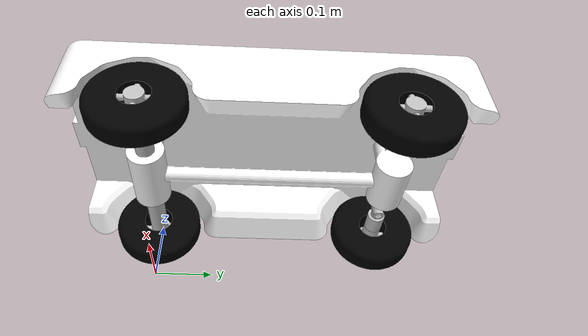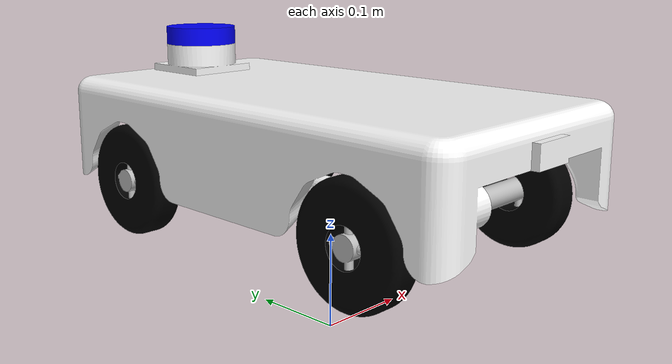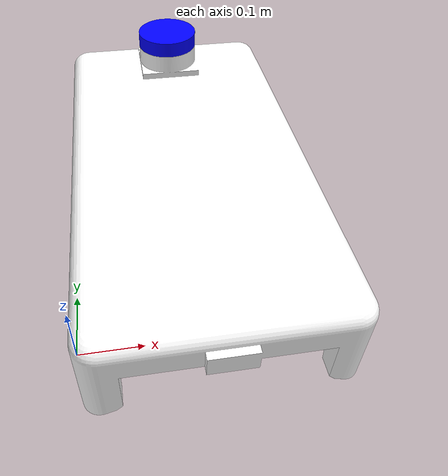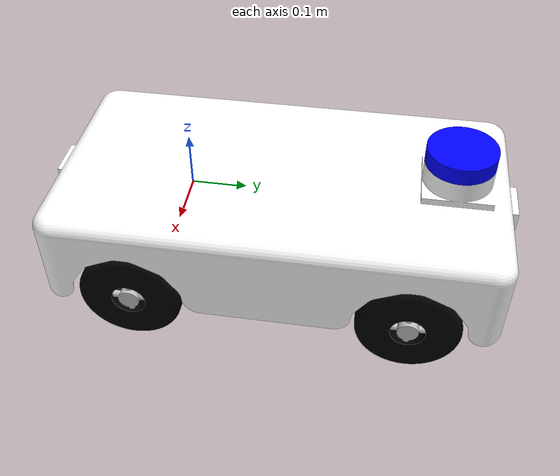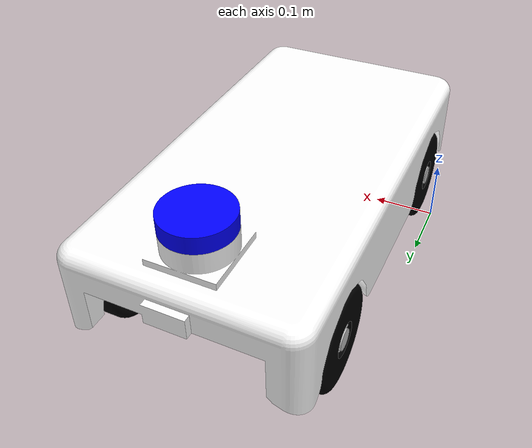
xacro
<?xml version="1.0" ?>
<robot name="carl" xmlns:xacro="http://www.ros.org/wiki/xacro">

<xacro:include filename="$(find carl_description)/urdf/materials.xacro" />
<xacro:include filename="$(find carl_description)/urdf/carl.ros2control" />
<xacro:include filename="$(find carl_description)/urdf/carl.gazebo" />
<link name="base_link">
  <inertial>
    <origin xyz="0.19274272765614664 0.20667696010061948 0.1698503724518462" rpy="0 0 0"/>
    <mass value="119.42621336084548"/>
    <inertia ixx="4.353879" iyy="1.545392" izz="5.601709" ixy="1.8e-05" iyz="-0.030575" ixz="-1.3e-05"/>
  </inertial>
  <visual>
    <origin xyz="0 0 0" rpy="0 0 0"/>
    <geometry>
      <mesh filename="file://$(find carl_description)/meshes/base_link.stl" scale="0.001 0.001 0.001"/>
    </geometry>
    <material name="white"/>
  </visual>
  <collision>
    <origin xyz="0 0 0" rpy="0 0 0"/>
    <geometry>
      <mesh filename="file://$(find carl_description)/meshes/base_link.stl" scale="0.001 0.001 0.001"/>
    </geometry>
  </collision>
</link>

<link name="destra_posteriore_1_1">
  <inertial>
    <origin xyz="0.07594062536046847 5.220698254173861e-15 2.42861286636753e-15" rpy="0 0 0"/>
    <mass value="0.8700997280951979"/>
    <inertia ixx="0.000109" iyy="0.001777" izz="0.001772" ixy="0.0" iyz="0.0" ixz="-0.0"/>
  </inertial>
  <visual>
    <origin xyz="-0.217744 -0.0 -0.08" rpy="0 0 0"/>
    <geometry>
      <mesh filename="file://$(find carl_description)/meshes/destra_posteriore_1_1.stl" scale="0.001 0.001 0.001"/>
    </geometry>
    <material name="silver"/>
  </visual>
  <collision>
    <origin xyz="-0.217744 -0.0 -0.08" rpy="0 0 0"/>
    <geometry>
      <mesh filename="file://$(find carl_description)/meshes/destra_posteriore_1_1.stl" scale="0.001 0.001 0.001"/>
    </geometry>
  </collision>
</link>

<link name="sinistra_posteriore_1_1">
  <inertial>
    <origin xyz="-0.07594062536046872 3.559100774456451e-15 -2.886579864025407e-15" rpy="0 0 0"/>
    <mass value="0.870099728095196"/>
    <inertia ixx="0.000109" iyy="0.001777" izz="0.001772" ixy="0.0" iyz="0.0" ixz="-0.0"/>
  </inertial>
  <visual>
    <origin xyz="-0.167744 -0.0 -0.08" rpy="0 0 0"/>
    <geometry>
      <mesh filename="file://$(find carl_description)/meshes/sinistra_posteriore_1_1.stl" scale="0.001 0.001 0.001"/>
    </geometry>
    <material name="silver"/>
  </visual>
  <collision>
    <origin xyz="-0.167744 -0.0 -0.08" rpy="0 0 0"/>
    <geometry>
      <mesh filename="file://$(find carl_description)/meshes/sinistra_posteriore_1_1.stl" scale="0.001 0.001 0.001"/>
    </geometry>
  </collision>
</link>

<link name="ruota_destra_anteriore_2_1">
  <inertial>
    <origin xyz="0.019862858215798695 1.887379141862766e-15 9.71445146547012e-17" rpy="0 0 0"/>
    <mass value="0.25792403152273063"/>
    <inertia ixx="3.7e-05" iyy="5.8e-05" izz="5.8e-05" ixy="-0.0" iyz="-0.0" ixz="-0.0"/>
  </inertial>
  <visual>
    <origin xyz="-0.327744 -0.4 -0.07995" rpy="0 0 0"/>
    <geometry>
      <mesh filename="file://$(find carl_description)/meshes/ruota_destra_anteriore_2_1.stl" scale="0.001 0.001 0.001"/>
    </geometry>
    <material name="silver"/>
  </visual>
  <collision>
    <origin xyz="-0.327744 -0.4 -0.07995" rpy="0 0 0"/>
    <geometry>
      <mesh filename="file://$(find carl_description)/meshes/ruota_destra_anteriore_2_1.stl" scale="0.001 0.001 0.001"/>
    </geometry>
  </collision>
</link>

<link name="ruota_sinistra_anteriore_2_1">
  <inertial>
    <origin xyz="-0.019862858215798224 2.7755575615628914e-16 4.163336342344337e-17" rpy="0 0 0"/>
    <mass value="0.25792403152273047"/>
    <inertia ixx="3.7e-05" iyy="5.8e-05" izz="5.8e-05" ixy="0.0" iyz="0.0" ixz="0.0"/>
  </inertial>
  <visual>
    <origin xyz="-0.057744 -0.4 -0.07995" rpy="0 0 0"/>
    <geometry>
      <mesh filename="file://$(find carl_description)/meshes/ruota_sinistra_anteriore_2_1.stl" scale="0.001 0.001 0.001"/>
    </geometry>
    <material name="silver"/>
  </visual>
  <collision>
    <origin xyz="-0.057744 -0.4 -0.07995" rpy="0 0 0"/>
    <geometry>
      <mesh filename="file://$(find carl_description)/meshes/ruota_sinistra_anteriore_2_1.stl" scale="0.001 0.001 0.001"/>
    </geometry>
  </collision>
</link>

<link name="Inclina_ruota_destra_1_1">
  <inertial>
    <origin xyz="0.021601012448857315 2.5424107263916085e-14 0.0099999999999998" rpy="0 0 0"/>
    <mass value="0.2278692862256936"/>
    <inertia ixx="2.3e-05" iyy="5.5e-05" izz="5.5e-05" ixy="-0.0" iyz="-0.0" ixz="-0.0"/>
  </inertial>
  <visual>
    <origin xyz="-0.282744 -0.4 -0.06995" rpy="0 0 0"/>
    <geometry>
      <mesh filename="file://$(find carl_description)/meshes/Inclina_ruota_destra_1_1.stl" scale="0.001 0.001 0.001"/>
    </geometry>
    <material name="silver"/>
  </visual>
  <collision>
    <origin xyz="-0.282744 -0.4 -0.06995" rpy="0 0 0"/>
    <geometry>
      <mesh filename="file://$(find carl_description)/meshes/Inclina_ruota_destra_1_1.stl" scale="0.001 0.001 0.001"/>
    </geometry>
  </collision>
</link>

<link name="Inclina_ruota_sinistra_1_1">
  <inertial>
    <origin xyz="-0.021601012448857204 -2.5590640717609858e-14 0.010000000000000148" rpy="0 0 0"/>
    <mass value="0.22786928622569286"/>
    <inertia ixx="2.3e-05" iyy="5.5e-05" izz="5.5e-05" ixy="-0.0" iyz="0.0" ixz="-0.0"/>
  </inertial>
  <visual>
    <origin xyz="-0.102744 -0.4 -0.06995" rpy="0 0 0"/>
    <geometry>
      <mesh filename="file://$(find carl_description)/meshes/Inclina_ruota_sinistra_1_1.stl" scale="0.001 0.001 0.001"/>
    </geometry>
    <material name="silver"/>
  </visual>
  <collision>
    <origin xyz="-0.102744 -0.4 -0.06995" rpy="0 0 0"/>
    <geometry>
      <mesh filename="file://$(find carl_description)/meshes/Inclina_ruota_sinistra_1_1.stl" scale="0.001 0.001 0.001"/>
    </geometry>
  </collision>
</link>

<link name="ruota_sinistra_anteriore_1_1">
  <inertial>
    <origin xyz="0.020000000000000708 0.0 1.3877787807814457e-16" rpy="0 0 0"/>
    <mass value="0.5660864943632601"/>
    <inertia ixx="0.001729" iyy="0.000937" izz="0.000937" ixy="-0.0" iyz="0.0" ixz="0.0"/>
  </inertial>
  <visual>
    <origin xyz="-0.017744 -0.4 -0.07995" rpy="0 0 0"/>
    <geometry>
      <mesh filename="file://$(find carl_description)/meshes/ruota_sinistra_anteriore_1_1.stl" scale="0.001 0.001 0.001"/>
    </geometry>
    <material name="black"/>
  </visual>
  <collision>
    <origin xyz="-0.017744 -0.4 -0.07995" rpy="0 0 0"/>
    <geometry>
      <mesh filename="file://$(find carl_description)/meshes/ruota_sinistra_anteriore_1_1.stl" scale="0.001 0.001 0.001"/>
    </geometry>
  </collision>
</link>

<link name="ruota_destra_anteriore_1_1">
  <inertial>
    <origin xyz="-0.020000000000000018 2.275957200481571e-15 1.3877787807814457e-17" rpy="0 0 0"/>
    <mass value="0.5660864943632605"/>
    <inertia ixx="0.001729" iyy="0.000937" izz="0.000937" ixy="0.0" iyz="-0.0" ixz="-0.0"/>
  </inertial>
  <visual>
    <origin xyz="-0.367744 -0.4 -0.07995" rpy="0 0 0"/>
    <geometry>
      <mesh filename="file://$(find carl_description)/meshes/ruota_destra_anteriore_1_1.stl" scale="0.001 0.001 0.001"/>
    </geometry>
    <material name="black"/>
  </visual>
  <collision>
    <origin xyz="-0.367744 -0.4 -0.07995" rpy="0 0 0"/>
    <geometry>
      <mesh filename="file://$(find carl_description)/meshes/ruota_destra_anteriore_1_1.stl" scale="0.001 0.001 0.001"/>
    </geometry>
  </collision>
</link>

<link name="ruota_destra_posteriore_1_1">
  <inertial>
    <origin xyz="-0.0200000000000104 1.4045208218299016e-15 -2.220446049250313e-16" rpy="0 0 0"/>
    <mass value="0.56608649436326"/>
    <inertia ixx="0.001729" iyy="0.000937" izz="0.000937" ixy="0.0" iyz="-0.0" ixz="0.0"/>
  </inertial>
  <visual>
    <origin xyz="-0.367744 -0.0 -0.08" rpy="0 0 0"/>
    <geometry>
      <mesh filename="file://$(find carl_description)/meshes/ruota_destra_posteriore_1_1.stl" scale="0.001 0.001 0.001"/>
    </geometry>
    <material name="black"/>
  </visual>
  <collision>
    <origin xyz="-0.367744 -0.0 -0.08" rpy="0 0 0"/>
    <geometry>
      <mesh filename="file://$(find carl_description)/meshes/ruota_destra_posteriore_1_1.stl" scale="0.001 0.001 0.001"/>
    </geometry>
  </collision>
</link>

<link name="ruota_sinistra_posteriore_1_1">
  <inertial>
    <origin xyz="0.01999999999998774 -1.3447539783477793e-16 -5.564992910933597e-15" rpy="0 0 0"/>
    <mass value="0.5660864943632594"/>
    <inertia ixx="0.001729" iyy="0.000937" izz="0.000937" ixy="-0.0" iyz="-0.0" ixz="0.0"/>
  </inertial>
  <visual>
    <origin xyz="-0.017744 -0.0 -0.08" rpy="0 0 0"/>
    <geometry>
      <mesh filename="file://$(find carl_description)/meshes/ruota_sinistra_posteriore_1_1.stl" scale="0.001 0.001 0.001"/>
    </geometry>
    <material name="black"/>
  </visual>
  <collision>
    <origin xyz="-0.017744 -0.0 -0.08" rpy="0 0 0"/>
    <geometry>
      <mesh filename="file://$(find carl_description)/meshes/ruota_sinistra_posteriore_1_1.stl" scale="0.001 0.001 0.001"/>
    </geometry>
  </collision>
</link>

<link name="LIDAR_1">
  <inertial>
    <origin xyz="4.718447854656915e-16 -5.551115123125783e-17 0.012499999999999956" rpy="0 0 0"/>
    <mass value="1.5413438956674923"/>
    <inertia ixx="0.001044" iyy="0.001044" izz="0.001927" ixy="0.0" iyz="0.0" ixz="0.0"/>
  </inertial>
  <visual>
    <origin xyz="-0.192744 -0.45 -0.25" rpy="0 0 0"/>
    <geometry>
      <mesh filename="file://$(find carl_description)/meshes/LIDAR_1.stl" scale="0.001 0.001 0.001"/>
    </geometry>
    <material name="blue"/>
  </visual>
  <collision>
    <origin xyz="-0.192744 -0.45 -0.25" rpy="0 0 0"/>
    <geometry>
      <mesh filename="file://$(find carl_description)/meshes/LIDAR_1.stl" scale="0.001 0.001 0.001"/>
    </geometry>
  </collision>
</link>

<joint name="Ruota_destra_posteriore" type="continuous">
  <origin xyz="0.217744 0.0 0.08" rpy="0 0 0"/>
  <parent link="base_link"/>
  <child link="destra_posteriore_1_1"/>
  <axis xyz="-1.0 -0.0 -0.0"/>
</joint>

<joint name="Ruota_sinistra_posteriore" type="continuous">
  <origin xyz="0.167744 0.0 0.08" rpy="0 0 0"/>
  <parent link="base_link"/>
  <child link="sinistra_posteriore_1_1"/>
  <axis xyz="-1.0 0.0 -0.0"/>
</joint>

<joint name="Ruota_destra_anteriore" type="continuous">
  <origin xyz="0.045 0.0 0.01" rpy="0 0 0"/>
  <parent link="Inclina_ruota_destra_1_1"/>
  <child link="ruota_destra_anteriore_2_1"/>
  <axis xyz="-1.0 0.0 0.0"/>
</joint>

<joint name="Ruota_sinistra_anteriore" type="continuous">
  <origin xyz="-0.045 0.0 0.01" rpy="0 0 0"/>
  <parent link="Inclina_ruota_sinistra_1_1"/>
  <child link="ruota_sinistra_anteriore_2_1"/>
  <axis xyz="-1.0 -0.0 0.0"/>
</joint>

<joint name="Inclina_destra_anteriore" type="revolute">
  <origin xyz="0.282744 0.4 0.06995" rpy="0 0 0"/>
  <parent link="base_link"/>
  <child link="Inclina_ruota_destra_1_1"/>
  <axis xyz="0.0 0.0 1.0"/>
  <limit upper="0.523599" lower="-0.523599" effort="100" velocity="100"/>
</joint>

<joint name="Inclina_sinistra_anteriore" type="revolute">
  <origin xyz="0.102744 0.4 0.06995" rpy="0 0 0"/>
  <parent link="base_link"/>
  <child link="Inclina_ruota_sinistra_1_1"/>
  <axis xyz="0.0 0.0 1.0"/>
  <limit upper="0.523599" lower="-0.523599" effort="100" velocity="100"/>
</joint>

<joint name="Rigido 62" type="fixed">
  <origin xyz="-0.04 0.0 0.0" rpy="0 0 0"/>
  <parent link="ruota_sinistra_anteriore_2_1"/>
  <child link="ruota_sinistra_anteriore_1_1"/>
</joint>

<joint name="Rigido 63" type="fixed">
  <origin xyz="0.04 0.0 0.0" rpy="0 0 0"/>
  <parent link="ruota_destra_anteriore_2_1"/>
  <child link="ruota_destra_anteriore_1_1"/>
</joint>

<joint name="Rigido 64" type="fixed">
  <origin xyz="0.15 0.0 0.0" rpy="0 0 0"/>
  <parent link="destra_posteriore_1_1"/>
  <child link="ruota_destra_posteriore_1_1"/>
</joint>

<joint name="Rigido 65" type="fixed">
  <origin xyz="-0.15 0.0 0.0" rpy="0 0 0"/>
  <parent link="sinistra_posteriore_1_1"/>
  <child link="ruota_sinistra_posteriore_1_1"/>
</joint>

<joint name="LIDAR" type="fixed">
  <origin xyz="0.192744 0.45 0.25" rpy="0 0 0"/>
  <parent link="base_link"/>
  <child link="LIDAR_1"/>
</joint>

</robot>

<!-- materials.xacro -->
<robot xmlns:xacro="http://www.ros.org/wiki/xacro">

  <material name="black">
    <color rgba="0.0 0.0 0.0 1.0"/>
  </material>

  <material name="silver">
    <color rgba="0.75 0.75 0.75 1.0"/>
  </material>

  <material name="white">
    <color rgba="1.0 1.0 1.0 1.0"/>
  </material>

  <material name="blue">
    <color rgba="0.0 0.0 1.0 1.0"/>
  </material>

</robot>

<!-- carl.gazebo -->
<robot name="carl" xmlns:xacro="http://www.ros.org/wiki/xacro" >

<xacro:property name="mecanic_color" value="Gazebo/Silver"/>
<xacro:property name="body_color" value="Gazebo/White"/>
<xacro:property name="wheel_color" value="Gazebo/Black"/>
<xacro:property name="lidar_color" value="Gazebo/Blue"/>

<gazebo>
  <plugin filename="gz_ros2_control-system" name="gz_ros2_control::GazeboSimROS2ControlPlugin">
    <parameters>$(find carl_description)/config/ros_gz_bridge_gazebo.yaml</parameters>
  </plugin>
  <plugin filename="gz-sim-sensors-system" name="gz::sim::systems::Sensors">
    <render_engine>ogre2</render_engine>
  </plugin>
</gazebo>

<gazebo reference="base_link">
  <material>${body_color}</material>
  <mu1>0.2</mu1>
  <mu2>0.2</mu2>
  <self_collide>true</self_collide>
  <gravity>true</gravity>
</gazebo>

<gazebo reference="destra_posteriore_1_1">
  <material>${mecanic_color}</material>
  <mu1>0.2</mu1>
  <mu2>0.2</mu2>
  <self_collide>true</self_collide>
</gazebo>

<gazebo reference="sinistra_posteriore_1_1">
  <material>${mecanic_color}</material>
  <mu1>0.2</mu1>
  <mu2>0.2</mu2>
  <self_collide>true</self_collide>
</gazebo>

<gazebo reference="ruota_destra_anteriore_2_1">
  <material>${mecanic_color}</material>
  <mu1>0.2</mu1>
  <mu2>0.2</mu2>
  <self_collide>true</self_collide>
</gazebo>

<gazebo reference="ruota_sinistra_anteriore_2_1">
  <material>${mecanic_color}</material>
  <mu1>0.2</mu1>
  <mu2>0.2</mu2>
  <self_collide>true</self_collide>
</gazebo>

<gazebo reference="Inclina_ruota_destra_1_1">
  <material>${mecanic_color}</material>
  <mu1>0.2</mu1>
  <mu2>0.2</mu2>
  <self_collide>true</self_collide>
</gazebo>

<gazebo reference="Inclina_ruota_sinistra_1_1">
  <material>${mecanic_color}</material>
  <mu1>0.2</mu1>
  <mu2>0.2</mu2>
  <self_collide>true</self_collide>
</gazebo>

<gazebo reference="ruota_sinistra_anteriore_1_1">
  <material>${wheel_color}</material>
  <mu1>0.2</mu1>
  <mu2>0.2</mu2>
  <self_collide>true</self_collide>
</gazebo>

<gazebo reference="ruota_destra_anteriore_1_1">
  <material>${wheel_color}</material>
  <mu1>0.2</mu1>
  <mu2>0.2</mu2>
  <self_collide>true</self_collide>
</gazebo>

<gazebo reference="ruota_destra_posteriore_1_1">
  <material>${wheel_color}</material>
  <mu1>0.2</mu1>
  <mu2>0.2</mu2>
  <self_collide>true</self_collide>
</gazebo>

<gazebo reference="ruota_sinistra_posteriore_1_1">
  <material>${wheel_color}</material>
  <mu1>0.2</mu1>
  <mu2>0.2</mu2>
  <self_collide>true</self_collide>
</gazebo>

<gazebo reference="LIDAR_1">
  <sensor name="LIDAR_1" type="gpu_lidar">
    <gz_frame_id>LIDAR_1</gz_frame_id>
    <topic>scan</topic>
    <update_rate>30</update_rate>
    <lidar>
      <scan>
        <horizontal>
          <samples>2800</samples>
          <resolution>1</resolution>
          <min_angle>-3.14</min_angle>
          <max_angle>3.14</max_angle>
        </horizontal>
        <vertical>
          <samples>1</samples>
          <resolution>0.1</resolution>
          <min_angle>0.0</min_angle>
          <max_angle>0.0</max_angle>
        </vertical>
      </scan>
      <range>
        <min>0.2</min>
        <max>15.0</max>
        <resolution>0.01</resolution>
      </range>
      <frame_id>/LIDAR_1</frame_id>
    </lidar>
    <alwaysOn>true</alwaysOn>
    <visualize>true</visualize>
  </sensor>
  <material>${lidar_color}</material>
  <selfCollide>false</selfCollide>
      <mu1 value="0.05" />
      <mu2 value="0.05" />
</gazebo>

</robot>
